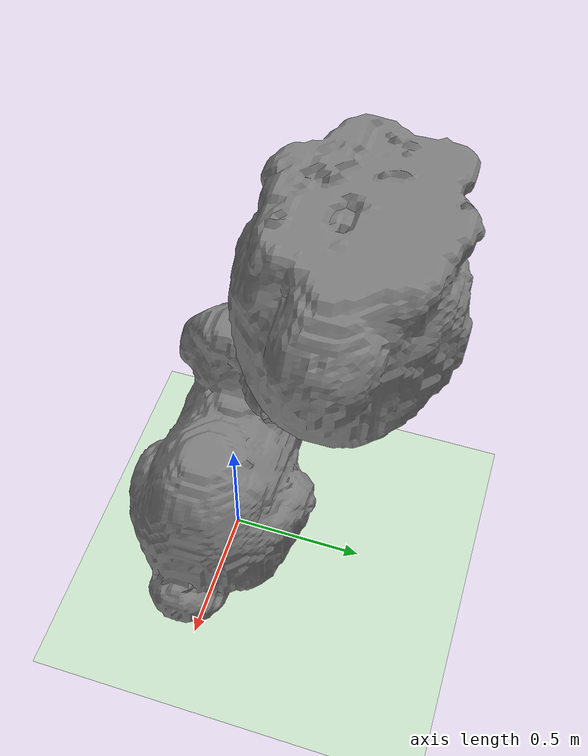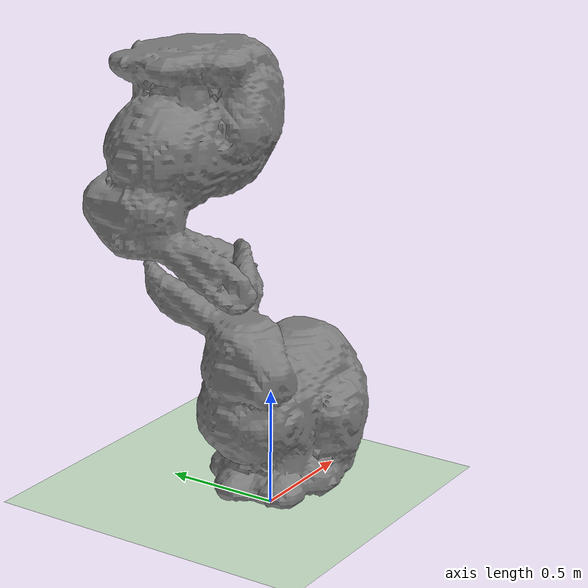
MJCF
<mujoco model="bunny">
  <asset>
    <mesh file="bunny/stl/bunny_level_1blender.stl" name="bluesoap_mesh" scale="1.0 1.0 1.0"/>
    <texture builtin="gradient" height="100" rgb1="1 1 1" rgb2="0 0 0" type="skybox" width="100"/>
    <texture builtin="flat" height="1278" mark="cross" markrgb="1 1 1" name="texgeom" random="0.01" rgb1="0.8 0.6 0.4" rgb2="0.8 0.6 0.4" type="cube" width="127"/>
    <texture builtin="checker" height="100" name="texplane" rgb1="0 0 0" rgb2="0.8 0.8 0.8" type="2d" width="100"/>
    <material name="MatPlane" reflectance="0.5" shininess="1" specular="1" texrepeat="60 60" texture="texplane"/>
    <material name="geom" texture="texgeom" texuniform="true"/>
  </asset>
  <worldbody>
    <light cutoff="100" diffuse="1 1 1" dir="-0 0 -1.3" directional="true" exponent="1" pos="0 0 1.3" specular=".1 .1 .1"/>
    <geom conaffinity="1" condim="3" material="MatPlane" name="floor" pos="0 0 0" rgba="0.8 0.9 0.8 1" size="40 40 40" type="plane"/>
    <body name="object1">
      <joint type="free"/>
      <geom pos="0 0.0 0.50" axisangle="1 0 0 -90" mesh="bluesoap_mesh" type="mesh" solimp="0.998 0.998 0.001" solref="0.001 1" density="50" friction="0.95 0.3 0.1"  group="0" condim="4"/>
    </body>
    <body name="object2">
      <joint type="free"/>
      <geom pos="0 0.4 1.50" axisangle="1 0 0 90" mesh="bluesoap_mesh" type="mesh" solimp="0.998 0.998 0.001" solref="0.001 1" density="50" friction="0.95 0.3 0.1"  group="0" condim="4"/>
    </body>
  </worldbody>
</mujoco>
